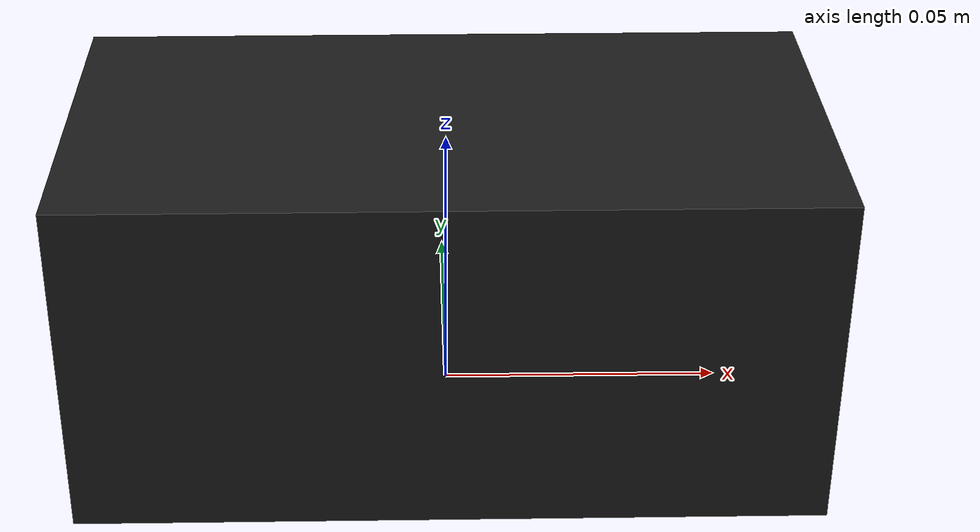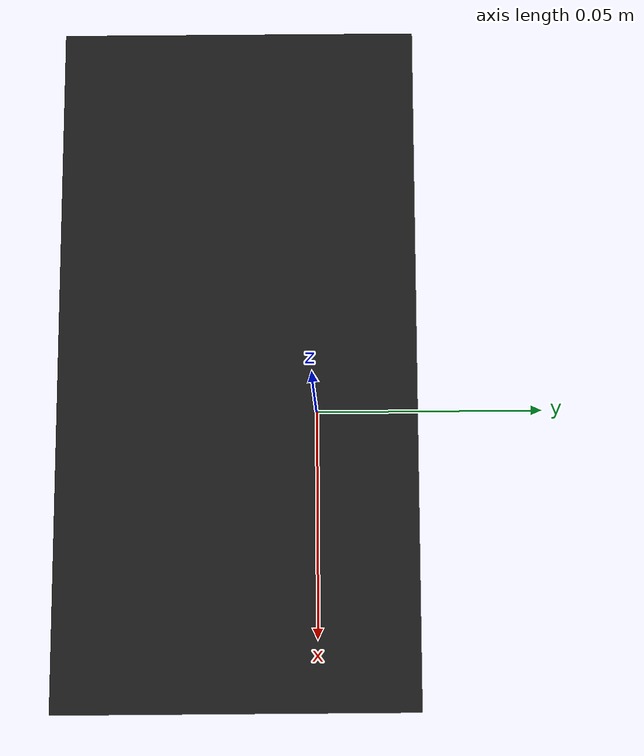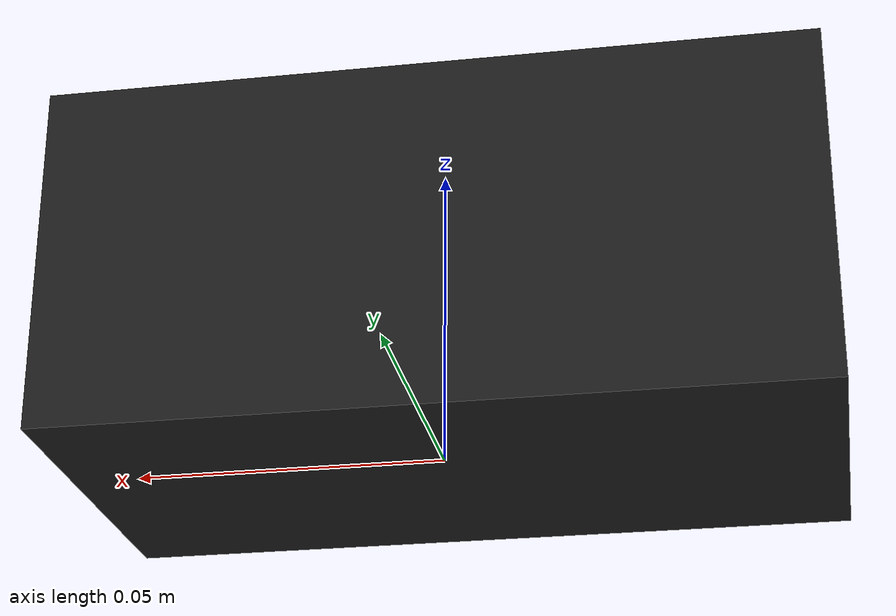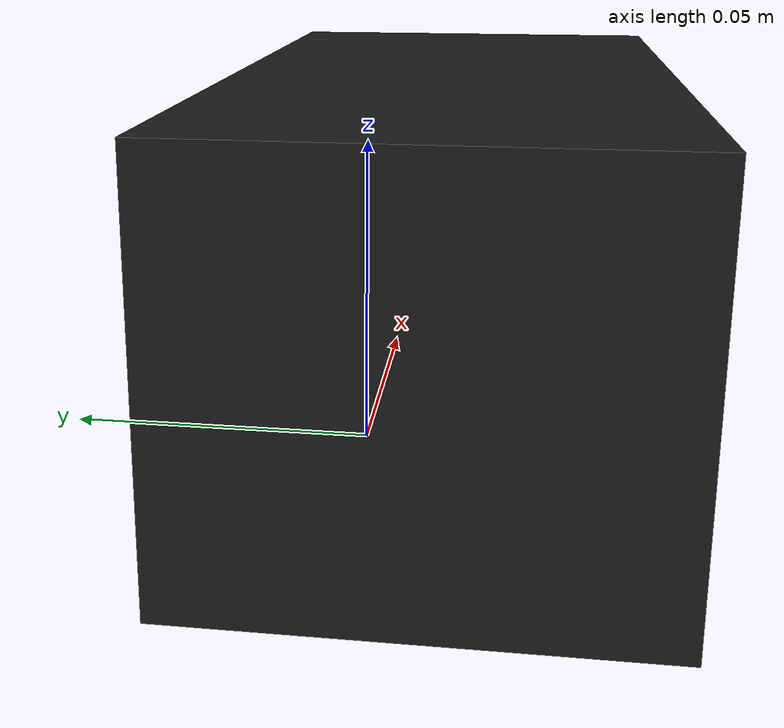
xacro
<?xml version="1.0"?>
<!--
Copyright (c) 2019, I3D Robotics Ltd.
-->

<robot name="titania"
    xmlns:xacro="http://wiki.ros.org/xacro">

    <xacro:arg name="camera_name" default="titania"/>
    <xacro:arg name="en_imu" default="false"/>
    <xacro:arg name="en_mesh" default="false"/>
    <xacro:arg name="en_collision" default="true"/>

    <xacro:include filename="$(find i3dr_titania)/urdf/titania.urdf.xacro" />
    <xacro:titania_camera camera_name="$(arg camera_name)" en_mesh="$(arg en_mesh)" en_imu="$(arg en_imu)" en_collision="$(arg en_collision)"/>
</robot>

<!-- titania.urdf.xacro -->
<!--
Copyright (c) 2018, I3D Robotics Ltd.
Edited: 2019, Marti Morta Garriga, Wood.
-->

<robot xmlns:xacro="http://wiki.ros.org/xacro">
    <xacro:macro name="titania_camera" params="camera_name:=titania en_mesh:=false en_imu:=false en_collision:=true">

    <xacro:property name="height" value="0.059"/>
    <xacro:property name="width" value="0.126"/>
    <xacro:property name="length" value="0.0655"/>
    <xacro:property name="baseline" value="0.09"/>
    <xacro:property name="img_w" value="1600"/>
    <xacro:property name="img_h" value="1200"/>
    <xacro:property name="mesh_file" value="package://i3dr_titania/mesh/titania.stl"/>
    <xacro:property name="mesh_offset_xyz" value="0 0 -0.072"/>
    <xacro:property name="mesh_offset_rpy" value="0 0 -${pi/2}"/>
    <xacro:property name="box_offset_xyz" value="0 0 0"/>
    <xacro:property name="box_offset_rpy" value="0 0 0"/>
    <xacro:property name="fov_rad" value="${57.8 * pi/180.0}"/>
    <xacro:property name="sim_w" value="${img_w}"/>
    <xacro:property name="sim_h" value="${img_h}"/>
    <xacro:property name="sim_rate" value="3"/>

    <material name="${camera_name}_darkgrey">
        <color rgba= "0.1 0.1 0.1 1.0"/>
    </material>

    <link name="${camera_name}_cameraLeft_optical" />
    <link name="${camera_name}_cameraRight_optical" />
    <link name="${camera_name}_cameraLeft" />
    <link name="${camera_name}_cameraRight" />

    <link name="${camera_name}_depth_optical_frame" />

    <link name="${camera_name}_base_link" />

    <link name="${camera_name}_mount_base_link" />

    <xacro:if value="${(en_imu == 'true')}">
        <link name="${camera_name}_imu_link"/>
    </xacro:if>

    <link name="${camera_name}_mount_point_1"/>
    <link name="${camera_name}_mount_point_2"/>

    <link name="${camera_name}_probe_mount"/>

    <link name="${camera_name}_center">
        <pose>0 0 0 0 0 0</pose>

        <inertial>
            <mass value="0.15"/>
            <origin rpy="0 0 0" xyz="0 0 0"/>
            <inertia ixx="0" ixy="0" ixz="0" iyy="0" iyz="0" izz="0"/>
        </inertial>

        <xacro:if value="${en_collision}">
            <collision name="${camera_name}_center_collision">
                <geometry>
                    <box size="${length} ${width} ${height}"/>
                </geometry>
            </collision>
        </xacro:if>

        <visual>
            <xacro:if value="${en_mesh}">
                <origin xyz="${mesh_offset_xyz}" rpy="${mesh_offset_rpy}"/>
            </xacro:if>
            <xacro:unless value="${en_mesh}">
                <origin xyz="${box_offset_xyz}" rpy="${box_offset_rpy}"/>
            </xacro:unless>
            <geometry>
                <xacro:if value="${en_mesh}">
                    <mesh filename="${mesh_file}"/>
                </xacro:if>
                <xacro:unless value="${en_mesh}">
                    <box size="${length} ${width} ${height}"/>
                </xacro:unless>
            </geometry>
            <material name="${camera_name}_darkgrey"/>
        </visual>
    </link>

    <xacro:if value="${en_imu}">
        <joint name="${camera_name}_imu_joint" type="fixed">
            <origin xyz="0 0 0" rpy="0 0 0" />
            <parent link="${camera_name}_base_link" />
            <child link="${camera_name}_imu_link" />
        </joint>
        <joint name="${camera_name}_imu_mount_joint" type="fixed">
            <origin xyz="0 0 0" rpy="0 0 0" />
            <parent link="${camera_name}_base_link" />
            <child link="${camera_name}_mount_base_link" />
        </joint>
    </xacro:if>
    <xacro:unless value="${en_imu}">
        <joint name="${camera_name}_base_mount_joint" type="fixed">
            <origin xyz="0 0 0" rpy="0 0 0" />
            <parent link="${camera_name}_base_link" />
            <child link="${camera_name}_mount_base_link" />
        </joint>
    </xacro:unless>

    <joint name="${camera_name}_right_camera_joint" type="fixed">
        <parent link="${camera_name}_center"/>
        <child link="${camera_name}_cameraRight"/>
        <origin xyz="0.015 ${(-baseline/2)+0.002} 0" rpy="0 0 0" />
    </joint>

    <joint name="${camera_name}_left_camera_joint" type="fixed">
        <parent link="${camera_name}_center"/>
        <child link="${camera_name}_cameraLeft"/>
        <origin xyz="0.015 ${(baseline/2)+0.002} 0" rpy="0 0 0" />
    </joint>

    <joint name="${camera_name}_left_optical_joint" type="fixed">
        <parent link="${camera_name}_cameraLeft"/>
        <child link="${camera_name}_cameraLeft_optical"/>
        <!-- Correct for the optical frame orientation -->
        <origin xyz="0 0 0" rpy="${-pi/2} 0 ${(-pi/2)}" />
    </joint>

    <joint name="${camera_name}_right_optical_joint" type="fixed">
        <parent link="${camera_name}_cameraRight"/>
        <child link="${camera_name}_cameraRight_optical"/>
        <!-- Correct for the optical frame orientation -->
        <origin xyz="0 0 0" rpy="${-pi/2} 0 ${(-pi/2)}" />
    </joint>

    <joint name="${camera_name}_depth_optical_joint" type="fixed">
        <parent link="${camera_name}_cameraLeft_optical"/>
        <child link="${camera_name}_depth_optical_frame"/>
        <origin xyz="0 0 0" rpy="0 0 0" />
    </joint>

    <joint name="${camera_name}_mount_center_joint" type="fixed">
        <parent link="${camera_name}_mount_base_link"/>
        <child link="${camera_name}_center"/>
        <origin xyz="0 -0.0133 0.0315" rpy="0 0 ${-pi/2}" />
    </joint>

    <joint name="${camera_name}_probe_mount_joint" type="fixed">
        <parent link="${camera_name}_mount_base_link"/>
        <child link="${camera_name}_probe_mount"/>
        <origin xyz="${0} 0 ${0}" rpy="0 0 0" />
    </joint>

    <joint name="${camera_name}_mount_point_1_joint" type="fixed">
        <parent link="${camera_name}_mount_base_link"/>
        <child link="${camera_name}_mount_point_1"/>
        <origin xyz="${-0.025} -0 ${0}" rpy="0 0 0" />
    </joint>
    <joint name="${camera_name}_mount_point_2_joint" type="fixed">
        <parent link="${camera_name}_mount_base_link"/>
        <child link="${camera_name}_mount_point_2"/>
        <origin xyz="${0.025} -0 ${0}" rpy="0 0 0" />
    </joint>

    <!-- Simulate stereo camera using gazebo -->
    <xacro:macro name="optical_camera" params="name offset fov_rad:=^ sim_w:=^ sim_h:=^">
        <camera name="${name}">
            <pose>0 ${offset} 0 0 0 0</pose>
            <horizontal_fov>${fov_rad}</horizontal_fov>
            <image>
                <width>${sim_w}</width>
                <height>${sim_h}</height>
                <format>B8G8R8</format>
            </image>
            <clip>
                <near>0.02</near>
                <far>300</far>
            </clip>
            <noise>
                <type>gaussian</type>
                <mean>0.0</mean>
                <stddev>0.007</stddev>
            </noise>
      </camera>
    </xacro:macro>
    <gazebo reference="${camera_name}_cameraLeft">
      <sensor type="multicamera" name="stereo_camera">
        <update_rate>${sim_rate}</update_rate> <!-- reality 60fps on USB3-->
        <xacro:optical_camera name="left" offset="0" />
        <xacro:optical_camera name="right" offset="${-baseline}" />
        <plugin name="stereo_camera_controller" filename="libgazebo_ros_multicamera.so">
          <alwaysOn>true</alwaysOn>
          <updateRate>${sim_rate}</updateRate>
          <cameraName>${camera_name}</cameraName>
          <imageTopicName>image_raw</imageTopicName>
          <cameraInfoTopicName>camera_info</cameraInfoTopicName>
          <frameName>${camera_name}_cameraLeft_optical</frameName>
          <hackBaseline>${baseline}</hackBaseline>
          <distortionK1>0.0</distortionK1>
          <distortionK2>0.0</distortionK2>
          <distortionK3>0.0</distortionK3>
          <distortionT1>0.0</distortionT1>
          <distortionT2>0.0</distortionT2>
        </plugin>
      </sensor>
    </gazebo>

    <!-- Simulate IMU using gazebo -->
    <xacro:if value="${en_imu}">
        <gazebo reference="${camera_name}_imu_link">
            <gravity>true</gravity>
            <sensor name="imu_sensor" type="imu">
            <always_on>true</always_on>
            <update_rate>100</update_rate>
            <visualize>true</visualize>
            <topic>__default_topic__</topic>
            <plugin filename="libgazebo_ros_imu_sensor.so" name="imu_plugin">
                <topicName>imu</topicName>
                <bodyName>${camera_name}_imu_link</bodyName>
                <updateRateHZ>10.0</updateRateHZ>
                <gaussianNoise>0.0</gaussianNoise>
                <xyzOffset>0 0 0</xyzOffset>
                <rpyOffset>0 0 0</rpyOffset>
                <frameName>${camera_name}_imu_link</frameName>
                <initialOrientationAsReference>false</initialOrientationAsReference>
            </plugin>
            <pose>0 0 0 0 0 0</pose>
            </sensor>
        </gazebo>
    </xacro:if>

    <!-- Attach material to gazebo object -->
    <gazebo reference="${camera_name}_center">
        <gravity>true</gravity>
        <material>Gazebo/DarkGrey</material>
    </gazebo>

  </xacro:macro>

</robot>
